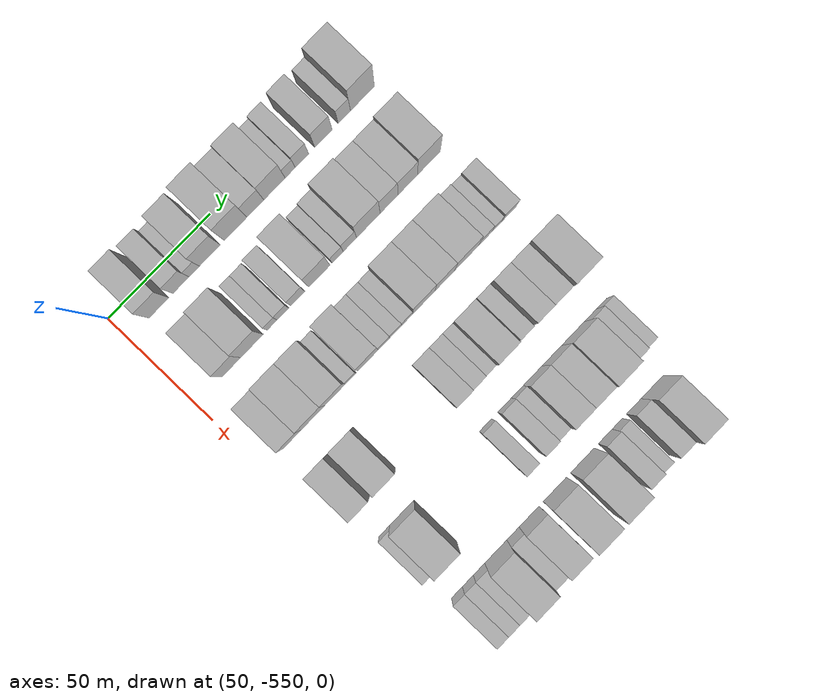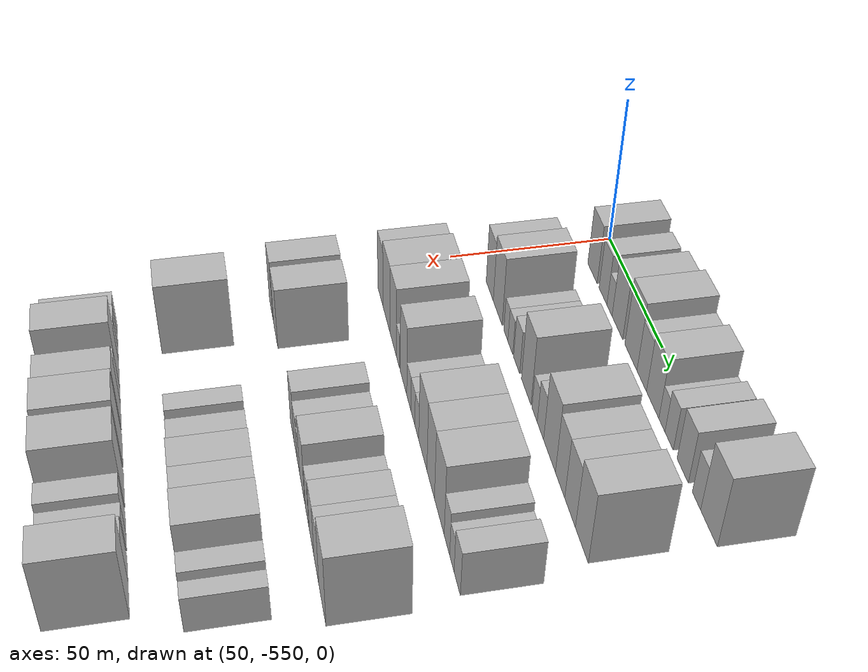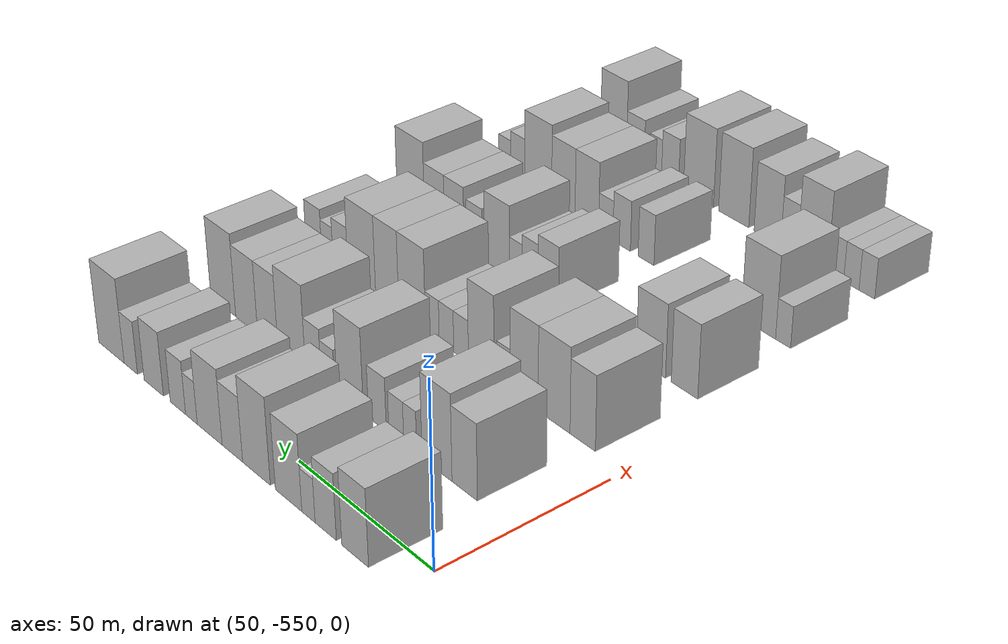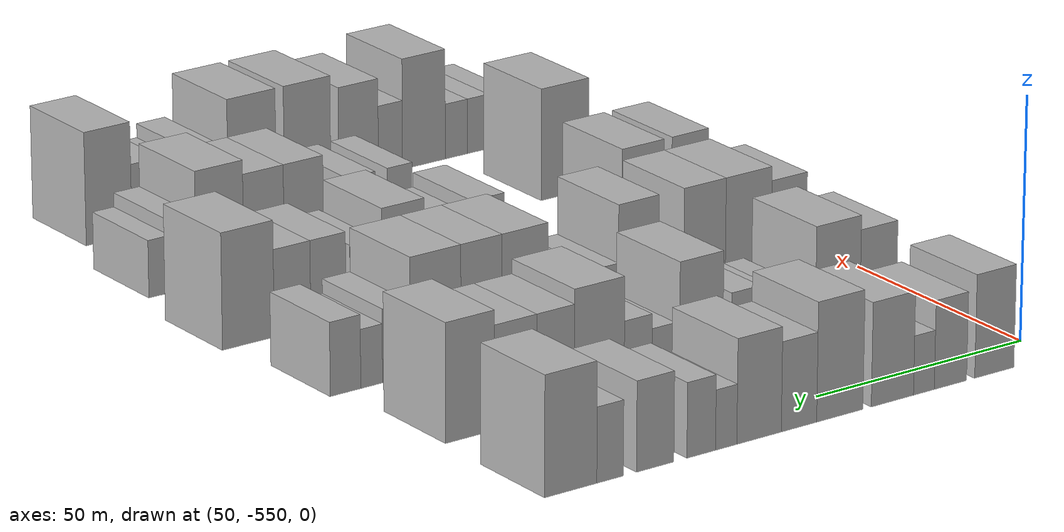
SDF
<sdf version="1.6">
 <world name="default">
  <model name="building_1">
   <static>1</static>
   <pose>50.0000 -535.1591 0 0.000000 0.000000 0.000000</pose>
   <link name="link">
    <pose>0 0 10.50 0 0 0</pose>
    <collision name="collision"><geometry><box><size>20.0000 9.6819 21.0000</size></box></geometry></collision>
    <visual name="visual">
     <cast_shadows>0</cast_shadows>
     <geometry><box><size>20.0000 9.6819 21.0000</size></box></geometry>
     <material>
      <script>
       <uri>model://HANNAS_wall/materials/scripts</uri>
       <uri>model://HANNAS_wall/materials/textures</uri>
       <name>vrc/HANNAS_wall</name>
      </script>
     </material>
    </visual>
   </link>
  </model>
  <model name="building_2">
   <static>1</static>
   <pose>50.0000 -524.3682 0 0.000000 0.000000 0.000000</pose>
   <link name="link">
    <pose>0 0 9.00 0 0 0</pose>
    <collision name="collision"><geometry><box><size>20.0000 7.8999 18.0000</size></box></geometry></collision>
    <visual name="visual">
     <cast_shadows>0</cast_shadows>
     <geometry><box><size>20.0000 7.8999 18.0000</size></box></geometry>
     <material>
      <script>
       <uri>model://HANNAS_wall/materials/scripts</uri>
       <uri>model://HANNAS_wall/materials/textures</uri>
       <name>vrc/HANNAS_wall</name>
      </script>
     </material>
    </visual>
   </link>
  </model>
  <model name="building_3">
   <static>1</static>
   <pose>50.0000 -517.8946 0 0.000000 0.000000 0.000000</pose>
   <link name="link">
    <pose>0 0 6.00 0 0 0</pose>
    <collision name="collision"><geometry><box><size>20.0000 5.0474 12.0000</size></box></geometry></collision>
    <visual name="visual">
     <cast_shadows>0</cast_shadows>
     <geometry><box><size>20.0000 5.0474 12.0000</size></box></geometry>
     <material>
      <script>
       <uri>model://HANNAS_wall/materials/scripts</uri>
       <uri>model://HANNAS_wall/materials/textures</uri>
       <name>vrc/HANNAS_wall</name>
      </script>
     </material>
    </visual>
   </link>
  </model>
  <model name="building_4">
   <static>1</static>
   <pose>50.0000 -510.2732 0 0.000000 0.000000 0.000000</pose>
   <link name="link">
    <pose>0 0 10.50 0 0 0</pose>
    <collision name="collision"><geometry><box><size>20.0000 10.1953 21.0000</size></box></geometry></collision>
    <visual name="visual">
     <cast_shadows>0</cast_shadows>
     <geometry><box><size>20.0000 10.1953 21.0000</size></box></geometry>
     <material>
      <script>
       <uri>model://HANNAS_wall/materials/scripts</uri>
       <uri>model://HANNAS_wall/materials/textures</uri>
       <name>vrc/HANNAS_wall</name>
      </script>
     </material>
    </visual>
   </link>
  </model>
  <model name="building_5">
   <static>1</static>
   <pose>50.0000 -497.6491 0 0.000000 0.000000 0.000000</pose>
   <link name="link">
    <pose>0 0 12.00 0 0 0</pose>
    <collision name="collision"><geometry><box><size>20.0000 11.0528 24.0000</size></box></geometry></collision>
    <visual name="visual">
     <cast_shadows>0</cast_shadows>
     <geometry><box><size>20.0000 11.0528 24.0000</size></box></geometry>
     <material>
      <script>
       <uri>model://HANNAS_wall/materials/scripts</uri>
       <uri>model://HANNAS_wall/materials/textures</uri>
       <name>vrc/HANNAS_wall</name>
      </script>
     </material>
    </visual>
   </link>
  </model>
  <model name="building_6">
   <static>1</static>
   <pose>50.0000 -487.9320 0 0.000000 0.000000 0.000000</pose>
   <link name="link">
    <pose>0 0 9.00 0 0 0</pose>
    <collision name="collision"><geometry><box><size>20.0000 8.3814 18.0000</size></box></geometry></collision>
    <visual name="visual">
     <cast_shadows>0</cast_shadows>
     <geometry><box><size>20.0000 8.3814 18.0000</size></box></geometry>
     <material>
      <script>
       <uri>model://HANNAS_wall/materials/scripts</uri>
       <uri>model://HANNAS_wall/materials/textures</uri>
       <name>vrc/HANNAS_wall</name>
      </script>
     </material>
    </visual>
   </link>
  </model>
  <model name="building_7">
   <static>1</static>
   <pose>50.0000 -478.5148 0 0.000000 0.000000 0.000000</pose>
   <link name="link">
    <pose>0 0 10.50 0 0 0</pose>
    <collision name="collision"><geometry><box><size>20.0000 10.4531 21.0000</size></box></geometry></collision>
    <visual name="visual">
     <cast_shadows>0</cast_shadows>
     <geometry><box><size>20.0000 10.4531 21.0000</size></box></geometry>
     <material>
      <script>
       <uri>model://HANNAS_wall/materials/scripts</uri>
       <uri>model://HANNAS_wall/materials/textures</uri>
       <name>vrc/HANNAS_wall</name>
      </script>
     </material>
    </visual>
   </link>
  </model>
  <model name="building_8">
   <static>1</static>
   <pose>50.0000 -470.8040 0 0.000000 0.000000 0.000000</pose>
   <link name="link">
    <pose>0 0 6.00 0 0 0</pose>
    <collision name="collision"><geometry><box><size>20.0000 4.9684 12.0000</size></box></geometry></collision>
    <visual name="visual">
     <cast_shadows>0</cast_shadows>
     <geometry><box><size>20.0000 4.9684 12.0000</size></box></geometry>
     <material>
      <script>
       <uri>model://HANNAS_wall/materials/scripts</uri>
       <uri>model://HANNAS_wall/materials/textures</uri>
       <name>vrc/HANNAS_wall</name>
      </script>
     </material>
    </visual>
   </link>
  </model>
  <model name="building_9">
   <static>1</static>
   <pose>50.0000 -464.9939 0 0.000000 0.000000 0.000000</pose>
   <link name="link">
    <pose>0 0 7.50 0 0 0</pose>
    <collision name="collision"><geometry><box><size>20.0000 6.6517 15.0000</size></box></geometry></collision>
    <visual name="visual">
     <cast_shadows>0</cast_shadows>
     <geometry><box><size>20.0000 6.6517 15.0000</size></box></geometry>
     <material>
      <script>
       <uri>model://HANNAS_wall/materials/scripts</uri>
       <uri>model://HANNAS_wall/materials/textures</uri>
       <name>vrc/HANNAS_wall</name>
      </script>
     </material>
    </visual>
   </link>
  </model>
  <model name="building_10">
   <static>1</static>
   <pose>50.0000 -454.3655 0 0.000000 0.000000 0.000000</pose>
   <link name="link">
    <pose>0 0 9.00 0 0 0</pose>
    <collision name="collision"><geometry><box><size>20.0000 8.6052 18.0000</size></box></geometry></collision>
    <visual name="visual">
     <cast_shadows>0</cast_shadows>
     <geometry><box><size>20.0000 8.6052 18.0000</size></box></geometry>
     <material>
      <script>
       <uri>model://HANNAS_wall/materials/scripts</uri>
       <uri>model://HANNAS_wall/materials/textures</uri>
       <name>vrc/HANNAS_wall</name>
      </script>
     </material>
    </visual>
   </link>
  </model>
  <model name="building_11">
   <static>1</static>
   <pose>50.0000 -444.0295 0 0.000000 0.000000 0.000000</pose>
   <link name="link">
    <pose>0 0 7.50 0 0 0</pose>
    <collision name="collision"><geometry><box><size>20.0000 6.0667 15.0000</size></box></geometry></collision>
    <visual name="visual">
     <cast_shadows>0</cast_shadows>
     <geometry><box><size>20.0000 6.0667 15.0000</size></box></geometry>
     <material>
      <script>
       <uri>model://HANNAS_wall/materials/scripts</uri>
       <uri>model://HANNAS_wall/materials/textures</uri>
       <name>vrc/HANNAS_wall</name>
      </script>
     </material>
    </visual>
   </link>
  </model>
  <model name="building_12">
   <static>1</static>
   <pose>50.0000 -435.0971 0 0.000000 0.000000 0.000000</pose>
   <link name="link">
    <pose>0 0 12.00 0 0 0</pose>
    <collision name="collision"><geometry><box><size>20.0000 11.7982 24.0000</size></box></geometry></collision>
    <visual name="visual">
     <cast_shadows>0</cast_shadows>
     <geometry><box><size>20.0000 11.7982 24.0000</size></box></geometry>
     <material>
      <script>
       <uri>model://HANNAS_wall/materials/scripts</uri>
       <uri>model://HANNAS_wall/materials/textures</uri>
       <name>vrc/HANNAS_wall</name>
      </script>
     </material>
    </visual>
   </link>
  </model>
  <model name="building_118">
   <static>1</static>
   <pose>82.0000 -532.4728 0 0.000000 0.000000 0.000000</pose>
   <link name="link">
    <pose>0 0 10.50 0 0 0</pose>
    <collision name="collision"><geometry><box><size>20.0000 9.0543 21.0000</size></box></geometry></collision>
    <visual name="visual">
     <cast_shadows>0</cast_shadows>
     <geometry><box><size>20.0000 9.0543 21.0000</size></box></geometry>
     <material>
      <script>
       <uri>model://HANNAS_wall/materials/scripts</uri>
       <uri>model://HANNAS_wall/materials/textures</uri>
       <name>vrc/HANNAS_wall</name>
      </script>
     </material>
    </visual>
   </link>
  </model>
  <model name="building_119">
   <static>1</static>
   <pose>82.0000 -522.4666 0 0.000000 0.000000 0.000000</pose>
   <link name="link">
    <pose>0 0 12.00 0 0 0</pose>
    <collision name="collision"><geometry><box><size>20.0000 10.9581 24.0000</size></box></geometry></collision>
    <visual name="visual">
     <cast_shadows>0</cast_shadows>
     <geometry><box><size>20.0000 10.9581 24.0000</size></box></geometry>
     <material>
      <script>
       <uri>model://HANNAS_wall/materials/scripts</uri>
       <uri>model://HANNAS_wall/materials/textures</uri>
       <name>vrc/HANNAS_wall</name>
      </script>
     </material>
    </visual>
   </link>
  </model>
  <model name="building_120">
   <static>1</static>
   <pose>82.0000 -512.5591 0 0.000000 0.000000 0.000000</pose>
   <link name="link">
    <pose>0 0 6.00 0 0 0</pose>
    <collision name="collision"><geometry><box><size>20.0000 4.8568 12.0000</size></box></geometry></collision>
    <visual name="visual">
     <cast_shadows>0</cast_shadows>
     <geometry><box><size>20.0000 4.8568 12.0000</size></box></geometry>
     <material>
      <script>
       <uri>model://HANNAS_wall/materials/scripts</uri>
       <uri>model://HANNAS_wall/materials/textures</uri>
       <name>vrc/HANNAS_wall</name>
      </script>
     </material>
    </visual>
   </link>
  </model>
  <model name="building_121">
   <static>1</static>
   <pose>82.0000 -507.3018 0 0.000000 0.000000 0.000000</pose>
   <link name="link">
    <pose>0 0 6.00 0 0 0</pose>
    <collision name="collision"><geometry><box><size>20.0000 5.6579 12.0000</size></box></geometry></collision>
    <visual name="visual">
     <cast_shadows>0</cast_shadows>
     <geometry><box><size>20.0000 5.6579 12.0000</size></box></geometry>
     <material>
      <script>
       <uri>model://HANNAS_wall/materials/scripts</uri>
       <uri>model://HANNAS_wall/materials/textures</uri>
       <name>vrc/HANNAS_wall</name>
      </script>
     </material>
    </visual>
   </link>
  </model>
  <model name="building_122">
   <static>1</static>
   <pose>82.0000 -500.0337 0 0.000000 0.000000 0.000000</pose>
   <link name="link">
    <pose>0 0 7.50 0 0 0</pose>
    <collision name="collision"><geometry><box><size>20.0000 6.8783 15.0000</size></box></geometry></collision>
    <visual name="visual">
     <cast_shadows>0</cast_shadows>
     <geometry><box><size>20.0000 6.8783 15.0000</size></box></geometry>
     <material>
      <script>
       <uri>model://HANNAS_wall/materials/scripts</uri>
       <uri>model://HANNAS_wall/materials/textures</uri>
       <name>vrc/HANNAS_wall</name>
      </script>
     </material>
    </visual>
   </link>
  </model>
  <model name="building_123">
   <static>1</static>
   <pose>82.0000 -489.4064 0 0.000000 0.000000 0.000000</pose>
   <link name="link">
    <pose>0 0 12.00 0 0 0</pose>
    <collision name="collision"><geometry><box><size>20.0000 10.3762 24.0000</size></box></geometry></collision>
    <visual name="visual">
     <cast_shadows>0</cast_shadows>
     <geometry><box><size>20.0000 10.3762 24.0000</size></box></geometry>
     <material>
      <script>
       <uri>model://HANNAS_wall/materials/scripts</uri>
       <uri>model://HANNAS_wall/materials/textures</uri>
       <name>vrc/HANNAS_wall</name>
      </script>
     </material>
    </visual>
   </link>
  </model>
  <model name="building_124">
   <static>1</static>
   <pose>82.0000 -480.4539 0 0.000000 0.000000 0.000000</pose>
   <link name="link">
    <pose>0 0 6.00 0 0 0</pose>
    <collision name="collision"><geometry><box><size>20.0000 5.5290 12.0000</size></box></geometry></collision>
    <visual name="visual">
     <cast_shadows>0</cast_shadows>
     <geometry><box><size>20.0000 5.5290 12.0000</size></box></geometry>
     <material>
      <script>
       <uri>model://HANNAS_wall/materials/scripts</uri>
       <uri>model://HANNAS_wall/materials/textures</uri>
       <name>vrc/HANNAS_wall</name>
      </script>
     </material>
    </visual>
   </link>
  </model>
  <model name="building_125">
   <static>1</static>
   <pose>82.0000 -474.4238 0 0.000000 0.000000 0.000000</pose>
   <link name="link">
    <pose>0 0 7.50 0 0 0</pose>
    <collision name="collision"><geometry><box><size>20.0000 6.5310 15.0000</size></box></geometry></collision>
    <visual name="visual">
     <cast_shadows>0</cast_shadows>
     <geometry><box><size>20.0000 6.5310 15.0000</size></box></geometry>
     <material>
      <script>
       <uri>model://HANNAS_wall/materials/scripts</uri>
       <uri>model://HANNAS_wall/materials/textures</uri>
       <name>vrc/HANNAS_wall</name>
      </script>
     </material>
    </visual>
   </link>
  </model>
  <model name="building_126">
   <static>1</static>
   <pose>82.0000 -465.3363 0 0.000000 0.000000 0.000000</pose>
   <link name="link">
    <pose>0 0 12.00 0 0 0</pose>
    <collision name="collision"><geometry><box><size>20.0000 11.6441 24.0000</size></box></geometry></collision>
    <visual name="visual">
     <cast_shadows>0</cast_shadows>
     <geometry><box><size>20.0000 11.6441 24.0000</size></box></geometry>
     <material>
      <script>
       <uri>model://HANNAS_wall/materials/scripts</uri>
       <uri>model://HANNAS_wall/materials/textures</uri>
       <name>vrc/HANNAS_wall</name>
      </script>
     </material>
    </visual>
   </link>
  </model>
  <model name="building_127">
   <static>1</static>
   <pose>82.0000 -455.1191 0 0.000000 0.000000 0.000000</pose>
   <link name="link">
    <pose>0 0 10.50 0 0 0</pose>
    <collision name="collision"><geometry><box><size>20.0000 8.7902 21.0000</size></box></geometry></collision>
    <visual name="visual">
     <cast_shadows>0</cast_shadows>
     <geometry><box><size>20.0000 8.7902 21.0000</size></box></geometry>
     <material>
      <script>
       <uri>model://HANNAS_wall/materials/scripts</uri>
       <uri>model://HANNAS_wall/materials/textures</uri>
       <name>vrc/HANNAS_wall</name>
      </script>
     </material>
    </visual>
   </link>
  </model>
  <model name="building_128">
   <static>1</static>
   <pose>82.0000 -445.8987 0 0.000000 0.000000 0.000000</pose>
   <link name="link">
    <pose>0 0 10.50 0 0 0</pose>
    <collision name="collision"><geometry><box><size>20.0000 9.6508 21.0000</size></box></geometry></collision>
    <visual name="visual">
     <cast_shadows>0</cast_shadows>
     <geometry><box><size>20.0000 9.6508 21.0000</size></box></geometry>
     <material>
      <script>
       <uri>model://HANNAS_wall/materials/scripts</uri>
       <uri>model://HANNAS_wall/materials/textures</uri>
       <name>vrc/HANNAS_wall</name>
      </script>
     </material>
    </visual>
   </link>
  </model>
  <model name="building_129">
   <static>1</static>
   <pose>82.0000 -435.4623 0 0.000000 0.000000 0.000000</pose>
   <link name="link">
    <pose>0 0 12.00 0 0 0</pose>
    <collision name="collision"><geometry><box><size>20.0000 11.2219 24.0000</size></box></geometry></collision>
    <visual name="visual">
     <cast_shadows>0</cast_shadows>
     <geometry><box><size>20.0000 11.2219 24.0000</size></box></geometry>
     <material>
      <script>
       <uri>model://HANNAS_wall/materials/scripts</uri>
       <uri>model://HANNAS_wall/materials/textures</uri>
       <name>vrc/HANNAS_wall</name>
      </script>
     </material>
    </visual>
   </link>
  </model>
  <model name="building_245">
   <static>1</static>
   <pose>114.0000 -535.5696 0 0.000000 0.000000 0.000000</pose>
   <link name="link">
    <pose>0 0 10.50 0 0 0</pose>
    <collision name="collision"><geometry><box><size>20.0000 8.8607 21.0000</size></box></geometry></collision>
    <visual name="visual">
     <cast_shadows>0</cast_shadows>
     <geometry><box><size>20.0000 8.8607 21.0000</size></box></geometry>
     <material>
      <script>
       <uri>model://HANNAS_wall/materials/scripts</uri>
       <uri>model://HANNAS_wall/materials/textures</uri>
       <name>vrc/HANNAS_wall</name>
      </script>
     </material>
    </visual>
   </link>
  </model>
  <model name="building_246">
   <static>1</static>
   <pose>114.0000 -525.4653 0 0.000000 0.000000 0.000000</pose>
   <link name="link">
    <pose>0 0 12.00 0 0 0</pose>
    <collision name="collision"><geometry><box><size>20.0000 11.3480 24.0000</size></box></geometry></collision>
    <visual name="visual">
     <cast_shadows>0</cast_shadows>
     <geometry><box><size>20.0000 11.3480 24.0000</size></box></geometry>
     <material>
      <script>
       <uri>model://HANNAS_wall/materials/scripts</uri>
       <uri>model://HANNAS_wall/materials/textures</uri>
       <name>vrc/HANNAS_wall</name>
      </script>
     </material>
    </visual>
   </link>
  </model>
  <model name="building_247">
   <static>1</static>
   <pose>114.0000 -514.6691 0 0.000000 0.000000 0.000000</pose>
   <link name="link">
    <pose>0 0 12.00 0 0 0</pose>
    <collision name="collision"><geometry><box><size>20.0000 10.2444 24.0000</size></box></geometry></collision>
    <visual name="visual">
     <cast_shadows>0</cast_shadows>
     <geometry><box><size>20.0000 10.2444 24.0000</size></box></geometry>
     <material>
      <script>
       <uri>model://HANNAS_wall/materials/scripts</uri>
       <uri>model://HANNAS_wall/materials/textures</uri>
       <name>vrc/HANNAS_wall</name>
      </script>
     </material>
    </visual>
   </link>
  </model>
  <model name="building_248">
   <static>1</static>
   <pose>114.0000 -507.0080 0 0.000000 0.000000 0.000000</pose>
   <link name="link">
    <pose>0 0 6.00 0 0 0</pose>
    <collision name="collision"><geometry><box><size>20.0000 5.0778 12.0000</size></box></geometry></collision>
    <visual name="visual">
     <cast_shadows>0</cast_shadows>
     <geometry><box><size>20.0000 5.0778 12.0000</size></box></geometry>
     <material>
      <script>
       <uri>model://HANNAS_wall/materials/scripts</uri>
       <uri>model://HANNAS_wall/materials/textures</uri>
       <name>vrc/HANNAS_wall</name>
      </script>
     </material>
    </visual>
   </link>
  </model>
  <model name="building_249">
   <static>1</static>
   <pose>114.0000 -498.5607 0 0.000000 0.000000 0.000000</pose>
   <link name="link">
    <pose>0 0 12.00 0 0 0</pose>
    <collision name="collision"><geometry><box><size>20.0000 9.8167 24.0000</size></box></geometry></collision>
    <visual name="visual">
     <cast_shadows>0</cast_shadows>
     <geometry><box><size>20.0000 9.8167 24.0000</size></box></geometry>
     <material>
      <script>
       <uri>model://HANNAS_wall/materials/scripts</uri>
       <uri>model://HANNAS_wall/materials/textures</uri>
       <name>vrc/HANNAS_wall</name>
      </script>
     </material>
    </visual>
   </link>
  </model>
  <model name="building_250">
   <static>1</static>
   <pose>114.0000 -490.7903 0 0.000000 0.000000 0.000000</pose>
   <link name="link">
    <pose>0 0 6.00 0 0 0</pose>
    <collision name="collision"><geometry><box><size>20.0000 5.7241 12.0000</size></box></geometry></collision>
    <visual name="visual">
     <cast_shadows>0</cast_shadows>
     <geometry><box><size>20.0000 5.7241 12.0000</size></box></geometry>
     <material>
      <script>
       <uri>model://HANNAS_wall/materials/scripts</uri>
       <uri>model://HANNAS_wall/materials/textures</uri>
       <name>vrc/HANNAS_wall</name>
      </script>
     </material>
    </visual>
   </link>
  </model>
  <model name="building_251">
   <static>1</static>
   <pose>114.0000 -485.0667 0 0.000000 0.000000 0.000000</pose>
   <link name="link">
    <pose>0 0 6.00 0 0 0</pose>
    <collision name="collision"><geometry><box><size>20.0000 5.7231 12.0000</size></box></geometry></collision>
    <visual name="visual">
     <cast_shadows>0</cast_shadows>
     <geometry><box><size>20.0000 5.7231 12.0000</size></box></geometry>
     <material>
      <script>
       <uri>model://HANNAS_wall/materials/scripts</uri>
       <uri>model://HANNAS_wall/materials/textures</uri>
       <name>vrc/HANNAS_wall</name>
      </script>
     </material>
    </visual>
   </link>
  </model>
  <model name="building_252">
   <static>1</static>
   <pose>114.0000 -479.4712 0 0.000000 0.000000 0.000000</pose>
   <link name="link">
    <pose>0 0 6.00 0 0 0</pose>
    <collision name="collision"><geometry><box><size>20.0000 5.4679 12.0000</size></box></geometry></collision>
    <visual name="visual">
     <cast_shadows>0</cast_shadows>
     <geometry><box><size>20.0000 5.4679 12.0000</size></box></geometry>
     <material>
      <script>
       <uri>model://HANNAS_wall/materials/scripts</uri>
       <uri>model://HANNAS_wall/materials/textures</uri>
       <name>vrc/HANNAS_wall</name>
      </script>
     </material>
    </visual>
   </link>
  </model>
  <model name="building_253">
   <static>1</static>
   <pose>114.0000 -471.3085 0 0.000000 0.000000 0.000000</pose>
   <link name="link">
    <pose>0 0 12.00 0 0 0</pose>
    <collision name="collision"><geometry><box><size>20.0000 10.8576 24.0000</size></box></geometry></collision>
    <visual name="visual">
     <cast_shadows>0</cast_shadows>
     <geometry><box><size>20.0000 10.8576 24.0000</size></box></geometry>
     <material>
      <script>
       <uri>model://HANNAS_wall/materials/scripts</uri>
       <uri>model://HANNAS_wall/materials/textures</uri>
       <name>vrc/HANNAS_wall</name>
      </script>
     </material>
    </visual>
   </link>
  </model>
  <model name="building_254">
   <static>1</static>
   <pose>114.0000 -461.0399 0 0.000000 0.000000 0.000000</pose>
   <link name="link">
    <pose>0 0 12.00 0 0 0</pose>
    <collision name="collision"><geometry><box><size>20.0000 9.6796 24.0000</size></box></geometry></collision>
    <visual name="visual">
     <cast_shadows>0</cast_shadows>
     <geometry><box><size>20.0000 9.6796 24.0000</size></box></geometry>
     <material>
      <script>
       <uri>model://HANNAS_wall/materials/scripts</uri>
       <uri>model://HANNAS_wall/materials/textures</uri>
       <name>vrc/HANNAS_wall</name>
      </script>
     </material>
    </visual>
   </link>
  </model>
  <model name="building_255">
   <static>1</static>
   <pose>114.0000 -450.3027 0 0.000000 0.000000 0.000000</pose>
   <link name="link">
    <pose>0 0 12.00 0 0 0</pose>
    <collision name="collision"><geometry><box><size>20.0000 11.7948 24.0000</size></box></geometry></collision>
    <visual name="visual">
     <cast_shadows>0</cast_shadows>
     <geometry><box><size>20.0000 11.7948 24.0000</size></box></geometry>
     <material>
      <script>
       <uri>model://HANNAS_wall/materials/scripts</uri>
       <uri>model://HANNAS_wall/materials/textures</uri>
       <name>vrc/HANNAS_wall</name>
      </script>
     </material>
    </visual>
   </link>
  </model>
  <model name="building_256">
   <static>1</static>
   <pose>114.0000 -441.1707 0 0.000000 0.000000 0.000000</pose>
   <link name="link">
    <pose>0 0 7.50 0 0 0</pose>
    <collision name="collision"><geometry><box><size>20.0000 6.4691 15.0000</size></box></geometry></collision>
    <visual name="visual">
     <cast_shadows>0</cast_shadows>
     <geometry><box><size>20.0000 6.4691 15.0000</size></box></geometry>
     <material>
      <script>
       <uri>model://HANNAS_wall/materials/scripts</uri>
       <uri>model://HANNAS_wall/materials/textures</uri>
       <name>vrc/HANNAS_wall</name>
      </script>
     </material>
    </visual>
   </link>
  </model>
  <model name="building_257">
   <static>1</static>
   <pose>114.0000 -435.4191 0 0.000000 0.000000 0.000000</pose>
   <link name="link">
    <pose>0 0 6.00 0 0 0</pose>
    <collision name="collision"><geometry><box><size>20.0000 5.0342 12.0000</size></box></geometry></collision>
    <visual name="visual">
     <cast_shadows>0</cast_shadows>
     <geometry><box><size>20.0000 5.0342 12.0000</size></box></geometry>
     <material>
      <script>
       <uri>model://HANNAS_wall/materials/scripts</uri>
       <uri>model://HANNAS_wall/materials/textures</uri>
       <name>vrc/HANNAS_wall</name>
      </script>
     </material>
    </visual>
   </link>
  </model>
  <model name="building_258">
   <static>1</static>
   <pose>114.0000 -429.4006 0 0.000000 0.000000 0.000000</pose>
   <link name="link">
    <pose>0 0 7.50 0 0 0</pose>
    <collision name="collision"><geometry><box><size>20.0000 7.0028 15.0000</size></box></geometry></collision>
    <visual name="visual">
     <cast_shadows>0</cast_shadows>
     <geometry><box><size>20.0000 7.0028 15.0000</size></box></geometry>
     <material>
      <script>
       <uri>model://HANNAS_wall/materials/scripts</uri>
       <uri>model://HANNAS_wall/materials/textures</uri>
       <name>vrc/HANNAS_wall</name>
      </script>
     </material>
    </visual>
   </link>
  </model>
  <model name="building_356">
   <static>1</static>
   <pose>146.0000 -535.4179 0 0.000000 0.000000 0.000000</pose>
   <link name="link">
    <pose>0 0 10.50 0 0 0</pose>
    <collision name="collision"><geometry><box><size>20.0000 9.1642 21.0000</size></box></geometry></collision>
    <visual name="visual">
     <cast_shadows>0</cast_shadows>
     <geometry><box><size>20.0000 9.1642 21.0000</size></box></geometry>
     <material>
      <script>
       <uri>model://HANNAS_wall/materials/scripts</uri>
       <uri>model://HANNAS_wall/materials/textures</uri>
       <name>vrc/HANNAS_wall</name>
      </script>
     </material>
    </visual>
   </link>
  </model>
  <model name="building_357">
   <static>1</static>
   <pose>146.0000 -523.6552 0 0.000000 0.000000 0.000000</pose>
   <link name="link">
    <pose>0 0 10.50 0 0 0</pose>
    <collision name="collision"><geometry><box><size>20.0000 10.3611 21.0000</size></box></geometry></collision>
    <visual name="visual">
     <cast_shadows>0</cast_shadows>
     <geometry><box><size>20.0000 10.3611 21.0000</size></box></geometry>
     <material>
      <script>
       <uri>model://HANNAS_wall/materials/scripts</uri>
       <uri>model://HANNAS_wall/materials/textures</uri>
       <name>vrc/HANNAS_wall</name>
      </script>
     </material>
    </visual>
   </link>
  </model>
  <model name="building_358">
   <static>1</static>
   <pose>146.0000 -485.6292 0 0.000000 0.000000 0.000000</pose>
   <link name="link">
    <pose>0 0 9.00 0 0 0</pose>
    <collision name="collision"><geometry><box><size>20.0000 7.8970 18.0000</size></box></geometry></collision>
    <visual name="visual">
     <cast_shadows>0</cast_shadows>
     <geometry><box><size>20.0000 7.8970 18.0000</size></box></geometry>
     <material>
      <script>
       <uri>model://HANNAS_wall/materials/scripts</uri>
       <uri>model://HANNAS_wall/materials/textures</uri>
       <name>vrc/HANNAS_wall</name>
      </script>
     </material>
    </visual>
   </link>
  </model>
  <model name="building_359">
   <static>1</static>
   <pose>146.0000 -478.5033 0 0.000000 0.000000 0.000000</pose>
   <link name="link">
    <pose>0 0 7.50 0 0 0</pose>
    <collision name="collision"><geometry><box><size>20.0000 6.3546 15.0000</size></box></geometry></collision>
    <visual name="visual">
     <cast_shadows>0</cast_shadows>
     <geometry><box><size>20.0000 6.3546 15.0000</size></box></geometry>
     <material>
      <script>
       <uri>model://HANNAS_wall/materials/scripts</uri>
       <uri>model://HANNAS_wall/materials/textures</uri>
       <name>vrc/HANNAS_wall</name>
      </script>
     </material>
    </visual>
   </link>
  </model>
  <model name="building_360">
   <static>1</static>
   <pose>146.0000 -472.7917 0 0.000000 0.000000 0.000000</pose>
   <link name="link">
    <pose>0 0 6.00 0 0 0</pose>
    <collision name="collision"><geometry><box><size>20.0000 5.0686 12.0000</size></box></geometry></collision>
    <visual name="visual">
     <cast_shadows>0</cast_shadows>
     <geometry><box><size>20.0000 5.0686 12.0000</size></box></geometry>
     <material>
      <script>
       <uri>model://HANNAS_wall/materials/scripts</uri>
       <uri>model://HANNAS_wall/materials/textures</uri>
       <name>vrc/HANNAS_wall</name>
      </script>
     </material>
    </visual>
   </link>
  </model>
  <model name="building_361">
   <static>1</static>
   <pose>146.0000 -465.2039 0 0.000000 0.000000 0.000000</pose>
   <link name="link">
    <pose>0 0 10.50 0 0 0</pose>
    <collision name="collision"><geometry><box><size>20.0000 10.1070 21.0000</size></box></geometry></collision>
    <visual name="visual">
     <cast_shadows>0</cast_shadows>
     <geometry><box><size>20.0000 10.1070 21.0000</size></box></geometry>
     <material>
      <script>
       <uri>model://HANNAS_wall/materials/scripts</uri>
       <uri>model://HANNAS_wall/materials/textures</uri>
       <name>vrc/HANNAS_wall</name>
      </script>
     </material>
    </visual>
   </link>
  </model>
  <model name="building_362">
   <static>1</static>
   <pose>146.0000 -455.8830 0 0.000000 0.000000 0.000000</pose>
   <link name="link">
    <pose>0 0 7.50 0 0 0</pose>
    <collision name="collision"><geometry><box><size>20.0000 6.5349 15.0000</size></box></geometry></collision>
    <visual name="visual">
     <cast_shadows>0</cast_shadows>
     <geometry><box><size>20.0000 6.5349 15.0000</size></box></geometry>
     <material>
      <script>
       <uri>model://HANNAS_wall/materials/scripts</uri>
       <uri>model://HANNAS_wall/materials/textures</uri>
       <name>vrc/HANNAS_wall</name>
      </script>
     </material>
    </visual>
   </link>
  </model>
  <model name="building_363">
   <static>1</static>
   <pose>146.0000 -447.4666 0 0.000000 0.000000 0.000000</pose>
   <link name="link">
    <pose>0 0 9.00 0 0 0</pose>
    <collision name="collision"><geometry><box><size>20.0000 8.2979 18.0000</size></box></geometry></collision>
    <visual name="visual">
     <cast_shadows>0</cast_shadows>
     <geometry><box><size>20.0000 8.2979 18.0000</size></box></geometry>
     <material>
      <script>
       <uri>model://HANNAS_wall/materials/scripts</uri>
       <uri>model://HANNAS_wall/materials/textures</uri>
       <name>vrc/HANNAS_wall</name>
      </script>
     </material>
    </visual>
   </link>
  </model>
  <model name="building_364">
   <static>1</static>
   <pose>146.0000 -439.0468 0 0.000000 0.000000 0.000000</pose>
   <link name="link">
    <pose>0 0 9.00 0 0 0</pose>
    <collision name="collision"><geometry><box><size>20.0000 8.5418 18.0000</size></box></geometry></collision>
    <visual name="visual">
     <cast_shadows>0</cast_shadows>
     <geometry><box><size>20.0000 8.5418 18.0000</size></box></geometry>
     <material>
      <script>
       <uri>model://HANNAS_wall/materials/scripts</uri>
       <uri>model://HANNAS_wall/materials/textures</uri>
       <name>vrc/HANNAS_wall</name>
      </script>
     </material>
    </visual>
   </link>
  </model>
  <model name="building_365">
   <static>1</static>
   <pose>146.0000 -428.7900 0 0.000000 0.000000 0.000000</pose>
   <link name="link">
    <pose>0 0 12.00 0 0 0</pose>
    <collision name="collision"><geometry><box><size>20.0000 11.9718 24.0000</size></box></geometry></collision>
    <visual name="visual">
     <cast_shadows>0</cast_shadows>
     <geometry><box><size>20.0000 11.9718 24.0000</size></box></geometry>
     <material>
      <script>
       <uri>model://HANNAS_wall/materials/scripts</uri>
       <uri>model://HANNAS_wall/materials/textures</uri>
       <name>vrc/HANNAS_wall</name>
      </script>
     </material>
    </visual>
   </link>
  </model>
  <model name="building_473">
   <static>1</static>
   <pose>178.0000 -536.4251 0 0.000000 0.000000 0.000000</pose>
   <link name="link">
    <pose>0 0 6.00 0 0 0</pose>
    <collision name="collision"><geometry><box><size>20.0000 5.1498 12.0000</size></box></geometry></collision>
    <visual name="visual">
     <cast_shadows>0</cast_shadows>
     <geometry><box><size>20.0000 5.1498 12.0000</size></box></geometry>
     <material>
      <script>
       <uri>model://HANNAS_wall/materials/scripts</uri>
       <uri>model://HANNAS_wall/materials/textures</uri>
       <name>vrc/HANNAS_wall</name>
      </script>
     </material>
    </visual>
   </link>
  </model>
  <model name="building_474">
   <static>1</static>
   <pose>178.0000 -527.8833 0 0.000000 0.000000 0.000000</pose>
   <link name="link">
    <pose>0 0 12.00 0 0 0</pose>
    <collision name="collision"><geometry><box><size>20.0000 11.9338 24.0000</size></box></geometry></collision>
    <visual name="visual">
     <cast_shadows>0</cast_shadows>
     <geometry><box><size>20.0000 11.9338 24.0000</size></box></geometry>
     <material>
      <script>
       <uri>model://HANNAS_wall/materials/scripts</uri>
       <uri>model://HANNAS_wall/materials/textures</uri>
       <name>vrc/HANNAS_wall</name>
      </script>
     </material>
    </visual>
   </link>
  </model>
  <model name="building_475">
   <static>1</static>
   <pose>178.0000 -486.8386 0 0.000000 0.000000 0.000000</pose>
   <link name="link">
    <pose>0 0 7.50 0 0 0</pose>
    <collision name="collision"><geometry><box><size>20.0000 6.0518 15.0000</size></box></geometry></collision>
    <visual name="visual">
     <cast_shadows>0</cast_shadows>
     <geometry><box><size>20.0000 6.0518 15.0000</size></box></geometry>
     <material>
      <script>
       <uri>model://HANNAS_wall/materials/scripts</uri>
       <uri>model://HANNAS_wall/materials/textures</uri>
       <name>vrc/HANNAS_wall</name>
      </script>
     </material>
    </visual>
   </link>
  </model>
  <model name="building_476">
   <static>1</static>
   <pose>178.0000 -477.4097 0 0.000000 0.000000 0.000000</pose>
   <link name="link">
    <pose>0 0 7.50 0 0 0</pose>
    <collision name="collision"><geometry><box><size>20.0000 6.8060 15.0000</size></box></geometry></collision>
    <visual name="visual">
     <cast_shadows>0</cast_shadows>
     <geometry><box><size>20.0000 6.8060 15.0000</size></box></geometry>
     <material>
      <script>
       <uri>model://HANNAS_wall/materials/scripts</uri>
       <uri>model://HANNAS_wall/materials/textures</uri>
       <name>vrc/HANNAS_wall</name>
      </script>
     </material>
    </visual>
   </link>
  </model>
  <model name="building_477">
   <static>1</static>
   <pose>178.0000 -471.1473 0 0.000000 0.000000 0.000000</pose>
   <link name="link">
    <pose>0 0 6.00 0 0 0</pose>
    <collision name="collision"><geometry><box><size>20.0000 5.7190 12.0000</size></box></geometry></collision>
    <visual name="visual">
     <cast_shadows>0</cast_shadows>
     <geometry><box><size>20.0000 5.7190 12.0000</size></box></geometry>
     <material>
      <script>
       <uri>model://HANNAS_wall/materials/scripts</uri>
       <uri>model://HANNAS_wall/materials/textures</uri>
       <name>vrc/HANNAS_wall</name>
      </script>
     </material>
    </visual>
   </link>
  </model>
  <model name="building_478">
   <static>1</static>
   <pose>178.0000 -463.5455 0 0.000000 0.000000 0.000000</pose>
   <link name="link">
    <pose>0 0 10.50 0 0 0</pose>
    <collision name="collision"><geometry><box><size>20.0000 9.4846 21.0000</size></box></geometry></collision>
    <visual name="visual">
     <cast_shadows>0</cast_shadows>
     <geometry><box><size>20.0000 9.4846 21.0000</size></box></geometry>
     <material>
      <script>
       <uri>model://HANNAS_wall/materials/scripts</uri>
       <uri>model://HANNAS_wall/materials/textures</uri>
       <name>vrc/HANNAS_wall</name>
      </script>
     </material>
    </visual>
   </link>
  </model>
  <model name="building_479">
   <static>1</static>
   <pose>178.0000 -453.9919 0 0.000000 0.000000 0.000000</pose>
   <link name="link">
    <pose>0 0 10.50 0 0 0</pose>
    <collision name="collision"><geometry><box><size>20.0000 9.6226 21.0000</size></box></geometry></collision>
    <visual name="visual">
     <cast_shadows>0</cast_shadows>
     <geometry><box><size>20.0000 9.6226 21.0000</size></box></geometry>
     <material>
      <script>
       <uri>model://HANNAS_wall/materials/scripts</uri>
       <uri>model://HANNAS_wall/materials/textures</uri>
       <name>vrc/HANNAS_wall</name>
      </script>
     </material>
    </visual>
   </link>
  </model>
  <model name="building_480">
   <static>1</static>
   <pose>178.0000 -443.5557 0 0.000000 0.000000 0.000000</pose>
   <link name="link">
    <pose>0 0 12.00 0 0 0</pose>
    <collision name="collision"><geometry><box><size>20.0000 11.2498 24.0000</size></box></geometry></collision>
    <visual name="visual">
     <cast_shadows>0</cast_shadows>
     <geometry><box><size>20.0000 11.2498 24.0000</size></box></geometry>
     <material>
      <script>
       <uri>model://HANNAS_wall/materials/scripts</uri>
       <uri>model://HANNAS_wall/materials/textures</uri>
       <name>vrc/HANNAS_wall</name>
      </script>
     </material>
    </visual>
   </link>
  </model>
  <model name="building_481">
   <static>1</static>
   <pose>178.0000 -434.8927 0 0.000000 0.000000 0.000000</pose>
   <link name="link">
    <pose>0 0 7.50 0 0 0</pose>
    <collision name="collision"><geometry><box><size>20.0000 6.0762 15.0000</size></box></geometry></collision>
    <visual name="visual">
     <cast_shadows>0</cast_shadows>
     <geometry><box><size>20.0000 6.0762 15.0000</size></box></geometry>
     <material>
      <script>
       <uri>model://HANNAS_wall/materials/scripts</uri>
       <uri>model://HANNAS_wall/materials/textures</uri>
       <name>vrc/HANNAS_wall</name>
      </script>
     </material>
    </visual>
   </link>
  </model>
  <model name="building_482">
   <static>1</static>
   <pose>178.0000 -429.3319 0 0.000000 0.000000 0.000000</pose>
   <link name="link">
    <pose>0 0 6.00 0 0 0</pose>
    <collision name="collision"><geometry><box><size>20.0000 5.0454 12.0000</size></box></geometry></collision>
    <visual name="visual">
     <cast_shadows>0</cast_shadows>
     <geometry><box><size>20.0000 5.0454 12.0000</size></box></geometry>
     <material>
      <script>
       <uri>model://HANNAS_wall/materials/scripts</uri>
       <uri>model://HANNAS_wall/materials/textures</uri>
       <name>vrc/HANNAS_wall</name>
      </script>
     </material>
    </visual>
   </link>
  </model>
  <model name="building_586">
   <static>1</static>
   <pose>210.0000 -534.3102 0 0.000000 0.000000 0.000000</pose>
   <link name="link">
    <pose>0 0 6.00 0 0 0</pose>
    <collision name="collision"><geometry><box><size>20.0000 5.3796 12.0000</size></box></geometry></collision>
    <visual name="visual">
     <cast_shadows>0</cast_shadows>
     <geometry><box><size>20.0000 5.3796 12.0000</size></box></geometry>
     <material>
      <script>
       <uri>model://HANNAS_wall/materials/scripts</uri>
       <uri>model://HANNAS_wall/materials/textures</uri>
       <name>vrc/HANNAS_wall</name>
      </script>
     </material>
    </visual>
   </link>
  </model>
  <model name="building_587">
   <static>1</static>
   <pose>210.0000 -528.9631 0 0.000000 0.000000 0.000000</pose>
   <link name="link">
    <pose>0 0 6.00 0 0 0</pose>
    <collision name="collision"><geometry><box><size>20.0000 5.3145 12.0000</size></box></geometry></collision>
    <visual name="visual">
     <cast_shadows>0</cast_shadows>
     <geometry><box><size>20.0000 5.3145 12.0000</size></box></geometry>
     <material>
      <script>
       <uri>model://HANNAS_wall/materials/scripts</uri>
       <uri>model://HANNAS_wall/materials/textures</uri>
       <name>vrc/HANNAS_wall</name>
      </script>
     </material>
    </visual>
   </link>
  </model>
  <model name="building_588">
   <static>1</static>
   <pose>210.0000 -523.4999 0 0.000000 0.000000 0.000000</pose>
   <link name="link">
    <pose>0 0 6.00 0 0 0</pose>
    <collision name="collision"><geometry><box><size>20.0000 5.6121 12.0000</size></box></geometry></collision>
    <visual name="visual">
     <cast_shadows>0</cast_shadows>
     <geometry><box><size>20.0000 5.6121 12.0000</size></box></geometry>
     <material>
      <script>
       <uri>model://HANNAS_wall/materials/scripts</uri>
       <uri>model://HANNAS_wall/materials/textures</uri>
       <name>vrc/HANNAS_wall</name>
      </script>
     </material>
    </visual>
   </link>
  </model>
  <model name="building_589">
   <static>1</static>
   <pose>210.0000 -515.2815 0 0.000000 0.000000 0.000000</pose>
   <link name="link">
    <pose>0 0 12.00 0 0 0</pose>
    <collision name="collision"><geometry><box><size>20.0000 10.8247 24.0000</size></box></geometry></collision>
    <visual name="visual">
     <cast_shadows>0</cast_shadows>
     <geometry><box><size>20.0000 10.8247 24.0000</size></box></geometry>
     <material>
      <script>
       <uri>model://HANNAS_wall/materials/scripts</uri>
       <uri>model://HANNAS_wall/materials/textures</uri>
       <name>vrc/HANNAS_wall</name>
      </script>
     </material>
    </visual>
   </link>
  </model>
  <model name="building_590">
   <static>1</static>
   <pose>210.0000 -506.8516 0 0.000000 0.000000 0.000000</pose>
   <link name="link">
    <pose>0 0 7.50 0 0 0</pose>
    <collision name="collision"><geometry><box><size>20.0000 6.0351 15.0000</size></box></geometry></collision>
    <visual name="visual">
     <cast_shadows>0</cast_shadows>
     <geometry><box><size>20.0000 6.0351 15.0000</size></box></geometry>
     <material>
      <script>
       <uri>model://HANNAS_wall/materials/scripts</uri>
       <uri>model://HANNAS_wall/materials/textures</uri>
       <name>vrc/HANNAS_wall</name>
      </script>
     </material>
    </visual>
   </link>
  </model>
  <model name="building_591">
   <static>1</static>
   <pose>210.0000 -498.9061 0 0.000000 0.000000 0.000000</pose>
   <link name="link">
    <pose>0 0 10.50 0 0 0</pose>
    <collision name="collision"><geometry><box><size>20.0000 9.8559 21.0000</size></box></geometry></collision>
    <visual name="visual">
     <cast_shadows>0</cast_shadows>
     <geometry><box><size>20.0000 9.8559 21.0000</size></box></geometry>
     <material>
      <script>
       <uri>model://HANNAS_wall/materials/scripts</uri>
       <uri>model://HANNAS_wall/materials/textures</uri>
       <name>vrc/HANNAS_wall</name>
      </script>
     </material>
    </visual>
   </link>
  </model>
  <model name="building_592">
   <static>1</static>
   <pose>210.0000 -486.2500 0 0.000000 0.000000 0.000000</pose>
   <link name="link">
    <pose>0 0 12.00 0 0 0</pose>
    <collision name="collision"><geometry><box><size>20.0000 11.4564 24.0000</size></box></geometry></collision>
    <visual name="visual">
     <cast_shadows>0</cast_shadows>
     <geometry><box><size>20.0000 11.4564 24.0000</size></box></geometry>
     <material>
      <script>
       <uri>model://HANNAS_wall/materials/scripts</uri>
       <uri>model://HANNAS_wall/materials/textures</uri>
       <name>vrc/HANNAS_wall</name>
      </script>
     </material>
    </visual>
   </link>
  </model>
  <model name="building_593">
   <static>1</static>
   <pose>210.0000 -472.6560 0 0.000000 0.000000 0.000000</pose>
   <link name="link">
    <pose>0 0 12.00 0 0 0</pose>
    <collision name="collision"><geometry><box><size>20.0000 11.7316 24.0000</size></box></geometry></collision>
    <visual name="visual">
     <cast_shadows>0</cast_shadows>
     <geometry><box><size>20.0000 11.7316 24.0000</size></box></geometry>
     <material>
      <script>
       <uri>model://HANNAS_wall/materials/scripts</uri>
       <uri>model://HANNAS_wall/materials/textures</uri>
       <name>vrc/HANNAS_wall</name>
      </script>
     </material>
    </visual>
   </link>
  </model>
  <model name="building_594">
   <static>1</static>
   <pose>210.0000 -461.3793 0 0.000000 0.000000 0.000000</pose>
   <link name="link">
    <pose>0 0 7.50 0 0 0</pose>
    <collision name="collision"><geometry><box><size>20.0000 6.8217 15.0000</size></box></geometry></collision>
    <visual name="visual">
     <cast_shadows>0</cast_shadows>
     <geometry><box><size>20.0000 6.8217 15.0000</size></box></geometry>
     <material>
      <script>
       <uri>model://HANNAS_wall/materials/scripts</uri>
       <uri>model://HANNAS_wall/materials/textures</uri>
       <name>vrc/HANNAS_wall</name>
      </script>
     </material>
    </visual>
   </link>
  </model>
  <model name="building_595">
   <static>1</static>
   <pose>210.0000 -455.4299 0 0.000000 0.000000 0.000000</pose>
   <link name="link">
    <pose>0 0 6.00 0 0 0</pose>
    <collision name="collision"><geometry><box><size>20.0000 5.0772 12.0000</size></box></geometry></collision>
    <visual name="visual">
     <cast_shadows>0</cast_shadows>
     <geometry><box><size>20.0000 5.0772 12.0000</size></box></geometry>
     <material>
      <script>
       <uri>model://HANNAS_wall/materials/scripts</uri>
       <uri>model://HANNAS_wall/materials/textures</uri>
       <name>vrc/HANNAS_wall</name>
      </script>
     </material>
    </visual>
   </link>
  </model>
  <model name="building_596">
   <static>1</static>
   <pose>210.0000 -447.2353 0 0.000000 0.000000 0.000000</pose>
   <link name="link">
    <pose>0 0 7.50 0 0 0</pose>
    <collision name="collision"><geometry><box><size>20.0000 7.3119 15.0000</size></box></geometry></collision>
    <visual name="visual">
     <cast_shadows>0</cast_shadows>
     <geometry><box><size>20.0000 7.3119 15.0000</size></box></geometry>
     <material>
      <script>
       <uri>model://HANNAS_wall/materials/scripts</uri>
       <uri>model://HANNAS_wall/materials/textures</uri>
       <name>vrc/HANNAS_wall</name>
      </script>
     </material>
    </visual>
   </link>
  </model>
  <model name="building_597">
   <static>1</static>
   <pose>210.0000 -438.1457 0 0.000000 0.000000 0.000000</pose>
   <link name="link">
    <pose>0 0 12.00 0 0 0</pose>
    <collision name="collision"><geometry><box><size>20.0000 10.8673 24.0000</size></box></geometry></collision>
    <visual name="visual">
     <cast_shadows>0</cast_shadows>
     <geometry><box><size>20.0000 10.8673 24.0000</size></box></geometry>
     <material>
      <script>
       <uri>model://HANNAS_wall/materials/scripts</uri>
       <uri>model://HANNAS_wall/materials/textures</uri>
       <name>vrc/HANNAS_wall</name>
      </script>
     </material>
    </visual>
   </link>
  </model>
 </world>
</sdf>
